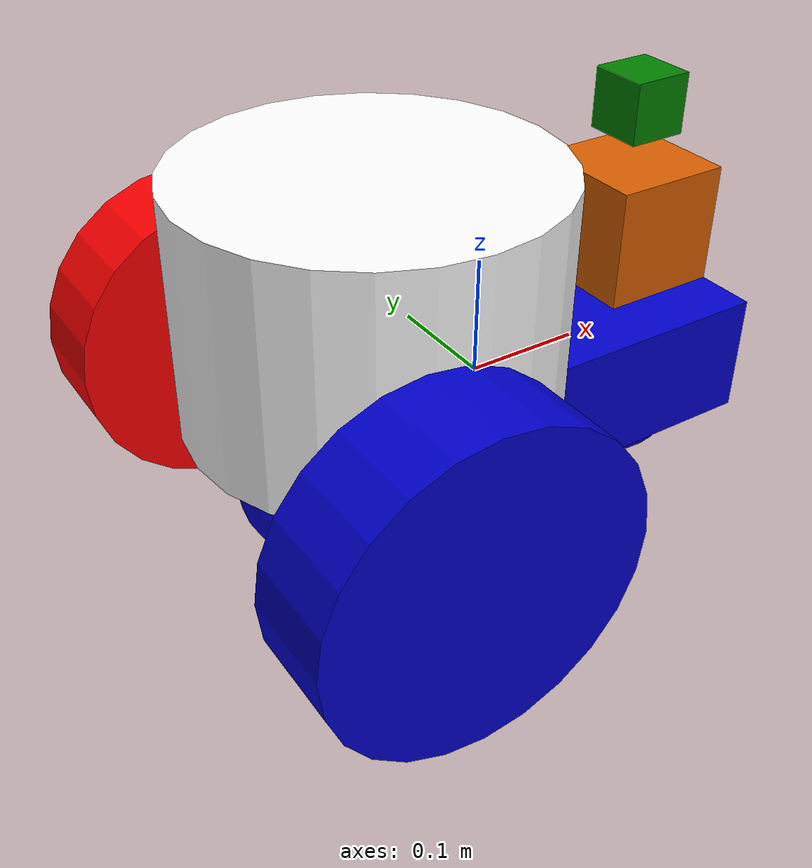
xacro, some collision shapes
<?xml version='1.0'?>

<robot name="my_robot" xmlns:xacro="http://www.ros.org/wiki/xacro">
  <xacro:property name="wheel_radius" value="0.13" />
  <xacro:property name="wheel_length" value="0.08" />
  <xacro:property name="box_x" value="0.4" />
  <xacro:property name="box_y" value="0.2" />
  <xacro:property name="box_z" value="0.1" />
  <xacro:property name="caster_radius" value="${wheel_radius/2}"/>
  <xacro:property name="distance_wheels" value="${box_y+wheel_length+0.1}" />
  <xacro:property name="offset_collision" value="0.005" />
  <xacro:include filename="$(find my_robot)/urdf/my_robot.gazebo" />

  <material name="blue">
    <color rgba="0 0 0.8 1"/>
  </material>
  <material name="white">
    <color rgba="1 1 1 1"/>
  </material>
 <material name="red">
    <color rgba="1 0 0 1"/>
  </material>

 <material name="green">
    <color rgba="0 0.5 0 1"/>
  </material>

<!-- CHASSIS -->
  <link name="robot_footprint">
    <pose>0 0 0 0 0 0</pose>
    <visual>
      <origin xyz="0 0 0" rpy="0 0 0"/>
      <geometry>
        <sphere radius="0.02"/>
      </geometry>
      <material name="red"/>
    </visual>
  </link>

  <joint name="robot_footprint_joint" type="fixed">
    <origin xyz="0 0 0" rpy="0 0 0" />
    <parent link="robot_footprint"/>
    <child link="base_link" />
  </joint>

  <link name="base_link">
    <pose>0 0 0.1 0 0 0</pose>

    <inertial>
      <mass value="5.0"/>
      <origin xyz="0.0 0 0" rpy=" 0 0 0"/>
      <inertia
          ixx="0.1" ixy="0" ixz="0"
          iyy="0.1" iyz="0"
          izz="0.1"
      />
    </inertial>

    <collision name="collision_box">
      <origin xyz="0 0 0" rpy=" 0 0 0"/>
      <geometry>
        <box size="${box_x} ${box_y} ${box_z}"/>
      </geometry>
    </collision>

    <visual name="visual_box">
      <origin xyz="0 0 0" rpy="0 0 0"/>
      <geometry>
        <box size="${box_x} ${box_y} ${box_z}"/>
      </geometry>
      <material name="blue"/>
    </visual>

        <visual name="control_box">
      <origin xyz="-0.1 0 ${box_z}" rpy="0 0 0"/>
      <geometry>
        <cylinder radius="${box_y/2+0.05}" length="0.2"/>
      </geometry>
      <material name="white"/>
    </visual>

    <visual name="back_caster_visual">
      <origin xyz="-0.15 0 -0.05" rpy="0 0 0"/>
      <geometry>
        <sphere radius="${caster_radius}"/>
      </geometry>
      <material name="blue"/>
    </visual>

    <collision name="back_caster_collision">
      <origin xyz="-0.15 0 -0.05" rpy="0 0 0"/>
      <geometry>
        <sphere radius="0.0499"/>
      </geometry>
    </collision>

    <visual name="front_caster_visual">
      <origin xyz="0.15 0 ${-caster_radius}" rpy="0 0 0"/>
      <geometry>
        <sphere radius="${caster_radius}"/>
      </geometry>
       <material name="blue"/>
    </visual>

    <collision name="front_caster_collision">
      <origin xyz="0.15 0 ${-caster_radius}" rpy=" 0 0 0"/>
      <geometry>
        <sphere radius="${caster_radius}"/>
      </geometry>
    </collision>

  </link>

<!-- WHEELS -->

   <link name ="left_wheel">
    <pose>0 0 0 0 0 0</pose>
    <visual name='left_wheel_visual'>
      <origin xyz="0 0 0" rpy="0 ${radians(90)} ${radians(90)}"/>
      <geometry>
        <cylinder radius="${wheel_radius}" length="${wheel_length}"/>
      </geometry>
      <material name="red"/>
    </visual>
    <inertial>
    <mass value="5.0"/>
      <origin xyz="0 0 0" rpy=" 0 0 0"/>
      <inertia
          ixx="0.1" ixy="0" ixz="0"
          iyy="0.1" iyz="0"
          izz="0.1"
      />
    </inertial>
    <collision name="left_wheel_collision">
        <origin xyz="0 0 0" rpy="0 ${radians(90)} ${radians(90)}"/>
        <geometry>
          <cylinder radius="${wheel_radius}" length="${wheel_length - offset_collision}"/>
        </geometry>
    </collision>>
  </link>

 <joint type="continuous" name="left_wheel_hinge">
    <origin xyz="-0.15 ${distance_wheels/2} 0.0" rpy="0 0 0"/>
    <child link="left_wheel"/>
    <parent link="robot_footprint"/>
    <axis xyz="0 1 0" rpy="0 0 0"/>
    <limit effort="10000" velocity="1000"/>
    <dynamics damping="1.0" friction="0.1"/>
  </joint>

   <link name ="right_wheel">
    <pose>0 0 0 0 0 0</pose>
    <visual name='right_wheel_visual'>
      <origin xyz="0 0 0" rpy="0 ${radians(90)} ${radians(90)}"/>
      <geometry>
        <cylinder radius="${wheel_radius}" length="${wheel_length}"/>
      </geometry>
      <material name="blue"/>
    </visual>
    <inertial>
    <mass value="5.0"/>
      <origin xyz="0 0 0" rpy=" 0 0 0"/>
      <inertia
          ixx="0.1" ixy="0" ixz="0"
          iyy="0.1" iyz="0"
          izz="0.1"
      />
    </inertial>
    <collision name="right_wheel_collision">
      <origin xyz="0 0 0" rpy="0 ${radians(90)} ${radians(90)}"/>
      <geometry>
        <cylinder radius="${wheel_radius}" length="${wheel_length- offset_collision}"/>
      </geometry>
    </collision>>
  </link>

  <joint type="continuous" name="right_wheel_hinge">
    <origin xyz="-0.15 -${distance_wheels/2} 0.0" rpy="0 0 0"/>
    <child link="right_wheel"/>
    <parent link="robot_footprint"/>
    <axis xyz="0 1 0" rpy="0 0 0"/>
    <limit effort="10000" velocity="1000"/>
    <dynamics damping="1.0" friction="0.1"/>
  </joint>

<!-- SENSORS -->

  <link name="camera">
  <pose>0 0 0 0 0 0</pose>
    <inertial>
      <origin xyz="0.0 0.0 0.0" rpy="0.0 0.0 0.0"/>
      <mass value="0.1"/>
      <inertia  ixx="1e-6" ixy="0.0" ixz="0.0"
                iyy="1e-6" iyz="0.0"
                izz="1e-6"/>
    </inertial>

    <visual name="camera_visual">
      <origin xyz="0.0 0.0 0.0" rpy="0.0 0.0 0.0"/>
      <geometry>
        <box size="0.05 0.05 0.05"/>
      </geometry>
      <material name="green"/>
    </visual>

    <collision>
      <origin xyz="0.0 0.0 0.0" rpy="0.0 0.0 0.0"/>
      <geometry>
        <box size="0.05 0.05 0.05"/>
      </geometry>
    </collision>
  </link>

  <joint name="camera_joint" type="fixed">
    <origin xyz="0.15 0 ${2*box_z}" rpy="0.0 0.0 0.0"/>
    <parent link="robot_footprint"/>
    <child link="camera"/>
    <axis xyz="0.0 1 0.0"/>
  </joint>

  <link name="hokuyo">
  <pose> 0 0 0 0 0 0 </pose>
    <inertial>
      <origin xyz="0.0 0.0 0.0" rpy="0.0 0.0 0.0"/>
      <mass value="1.0e-5"/>
      <inertia  ixx="1e-6" ixy="0.0" ixz="0.0"
                iyy="1e-6" iyz="0.0"
                izz="1e-6"/>
    </inertial>
    <visual name="hokuyo_visual">
      <origin xyz="0.0 0.0 0.0" rpy="0.0 0.0 0.0"/>
      <geometry>
         <mesh filename="package://my_robot/meshes/hokuyo.dae"/>
      </geometry>
    </visual>
    <collision>
      <origin xyz="0.0 0.0 0.0" rpy="0.0 0.0 0.0"/>
      <geometry>
        <box size="0.1 0.1 0.1"/>
      </geometry>
    </collision>
  </link>

  <joint name="hokuyo_joint" type="fixed">
    <origin xyz="0.15 0.0 0.1" rpy="0.0 0.0 0.0"/>
    <parent link="robot_footprint"/>
    <child link="hokuyo"/>
    <axis xyz="0.0 1.0 0.0"/>
  </joint>

<!--Optical camera RGBD -->

<joint name="camera_optical_joint" type="fixed">
    <origin xyz="0 0 0" rpy="-1.5707 0 -1.5707"/>
    <parent link="camera"/>
    <child link="camera_link_optical"/>
  </joint>

  <link name="camera_link_optical">
  </link>

</robot>
